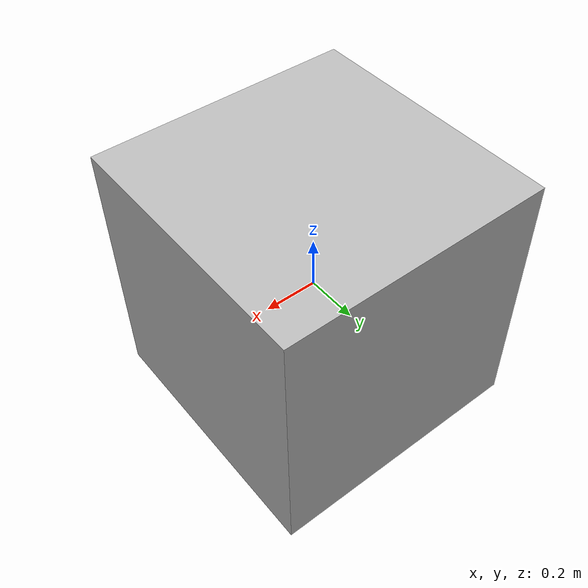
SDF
<?xml version="1.0" ?>
<sdf version="1.6">
  <model name="cityhall_box">
    <static>true</static>
    <link name="link">
      <collision name="collision">
        <geometry>
          <box>
            <size>1 1 1</size>
          </box>
        </geometry>
      </collision>
      <visual name="visual">
        <geometry>
          <box>
            <size>1 1 1</size>
          </box>
        </geometry>
      </visual>
    </link>
    <!-- Depth camera -->
    <link name="camera_link">
      <pose>0.1 0 0 0 0 0</pose>
      <inertial>
        <mass>0.01</mass>
        <pose>0 0 0 0 -0 0</pose>
        <inertia>
          <ixx>1.8e-7</ixx>
          <ixy>0</ixy>
          <ixz>0</ixz>
          <iyy>2.1733e-6</iyy>
          <iyz>0</iyz>
          <izz>1.8e-7</izz>
        </inertia>
      </inertial>
      <collision name="collision">
        <geometry>
          <box>
            <size>0.03 0.08 0.03</size>
          </box>
        </geometry>
      </collision>
      <visual name="camera_visual">
        <geometry>
          <box>
            <size>0.03 0.08 0.03</size>
          </box>
        </geometry>
        <material>
          <script>
            <name>Gazebo/DarkGrey</name>
            <uri>file://media/materials/scripts/gazebo.material</uri>
          </script>
        </material>
      </visual>
      <sensor name="camera" type="depth">
        <update_rate>30</update_rate>
        <camera>
          <horizontal_fov>1.047198</horizontal_fov>
          <image>
            <width>1280</width>
            <height>800</height>
            <format>R8G8B8</format>
          </image>
          <clip>
            <near>0.4</near>
            <far>6</far>
          </clip>
        </camera>
        <plugin name="camera_controller" filename="libgazebo_ros_openni_kinect.so">
          <baseline>0.2</baseline>
          <alwaysOn>true</alwaysOn>
          <updateRate>1.0</updateRate>
          <cameraName>camera_ir</cameraName>
          <imageTopicName>/camera/color/image_raw</imageTopicName>
          <cameraInfoTopicName>/camera/color/camera_info</cameraInfoTopicName>
          <depthImageTopicName>/camera/depth/image_raw</depthImageTopicName>
          <depthImageInfoTopicName>/camera/depth/camera_info</depthImageInfoTopicName>
          <pointCloudTopicName>/camera/depth/points</pointCloudTopicName>
          <frameName>camera_link</frameName>
          <pointCloudCutoff>0.4</pointCloudCutoff>
          <pointCloudCutoffMax>6.0</pointCloudCutoffMax>
          <distortionK1>0.00000001</distortionK1>
          <distortionK2>0.00000001</distortionK2>
          <distortionK3>0.00000001</distortionK3>
          <distortionT1>0.00000001</distortionT1>
          <distortionT2>0.00000001</distortionT2>
          <CxPrime>0</CxPrime>
          <Cx>0</Cx>
          <Cy>0</Cy>
          <focalLength>0</focalLength>
          <hackBaseline>0</hackBaseline>
        </plugin>
      </sensor>
    </link>
    <joint name="camera_joint" type="fixed">
      <child>camera_link</child>
      <parent>base_link</parent>
    </joint>
  </model>
</sdf>
